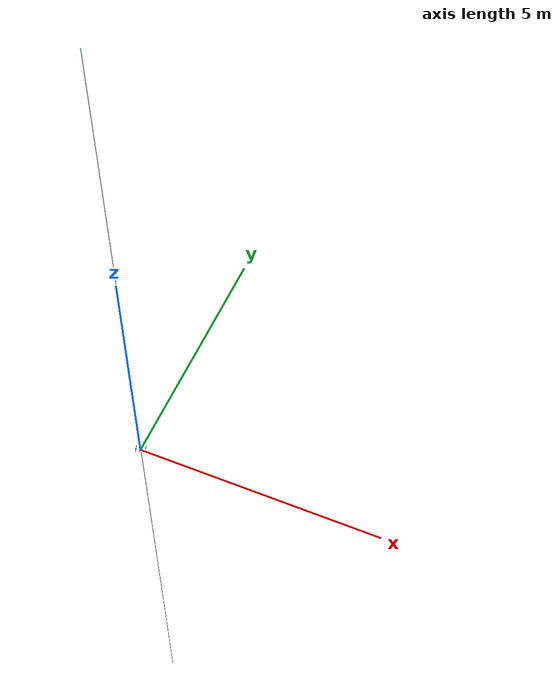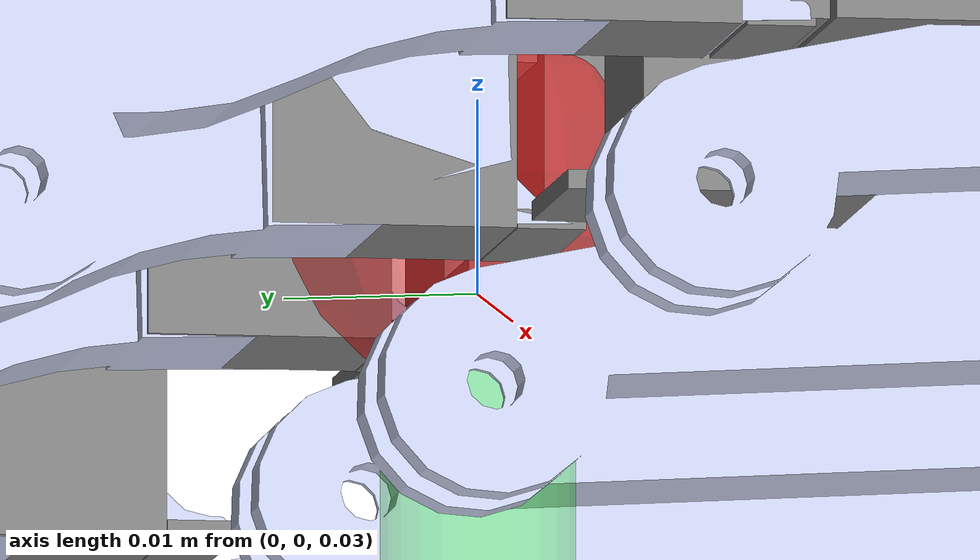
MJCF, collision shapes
<mujoco model="panda_hand">
    <asset>
        <mesh name="hand" file="meshes/panda_gripper/hand.stl" />
        <mesh name="hand_vis" file="meshes/D3_gripper_v9/base_link.STL" />
        <mesh name="finger" file="meshes/panda_gripper/finger.stl" />
        <mesh name="finger_vis" file="meshes/panda_gripper/finger_vis.stl" />
        <mesh name="finger_vis2" file="meshes/panda_gripper/finger_longer.stl" />
        <mesh name="left_gripper_finger" file="meshes/D3_gripper_v9/left_gripper_finger.STL" />
        <mesh name="right_gripper_finger" file="meshes/D3_gripper_v9/right_gripper_finger.STL" />
    </asset>
    <actuator>
        <position ctrllimited="true" ctrlrange="0.0 0.04" joint="finger_joint1" kp="1000" name="gripper_finger_joint1" forcelimited="true" forcerange="-20 20"/>
        <position ctrllimited="true" ctrlrange="-0.04 0.0" joint="finger_joint2" kp="1000" name="gripper_finger_joint2" forcelimited="true" forcerange="-20 20"/>
    </actuator>
    <worldbody>
        <body name="right_gripper" pos="0 0 -0.09" quat="0.707107 0 0 1">
            <site name="ft_frame" pos="0 0 0" size="0.01 0.01 0.01" rgba="1 0 0 1" type="sphere" group="1"/>
            <inertial pos="0 0 0.17" quat="0.707107 0.707107 0 0" mass="0.3" diaginertia="0.09 0.07 0.05" />
            <geom pos="0 0 0" quat="0.707107 0 0 0.707107" type="mesh" contype="0" conaffinity="0" group="1" mesh="hand_vis" name="hand_visual" rgba="1 1 1 1" />
            <!-- This site was added for visualization. -->
            <site name="grip_site" pos="0 0 0.125" size="0.01 0.01 0.01" rgba="1 0 0 0.5" type="sphere" group="1"/>
            <!-- This site was added for visualization. -->
            <site name="grip_site_cylinder" pos="0 0 0.1399" size="0.005 10" rgba="0 1 0 0.3" type="cylinder" group="1"/>

            <body name="leftfinger" pos="0 0 0.0524" quat="0.707107 0 0 0.707107">
                <inertial pos="0 0 0.05" mass="0.1" diaginertia="0.01 0.01 0.005" />
                <joint name="finger_joint1" pos="0 0 0" axis="0 1 0" type="slide" limited="true" range="0.0 0.04" damping="100" armature="1.0" frictionloss="1.0"/>
                <body name="finger_joint1_tip" pos="0 0.0085 0.056">
                    <inertial pos="0 0 0" quat="0 0 0 1" mass="0.01" diaginertia="0.01 0.01 0.01" />
                </body>
                <body name="right_gripper_finger" pos="0 0.039 0.0608">
                <inertial pos="-0.0018228 0.023251 -0.0083165" quat="0.537087 0.457285 0.441346 0.554654" mass="0.032218" diaginertia="1.84182e-05 1.82648e-05 6.97848e-07" />
                <geom type="mesh" group="1" contype="0" conaffinity="0" rgba="0.79216 0.81961 0.93333 1" mesh="right_gripper_finger" />
                 <geom type="mesh" group="0" rgba="0.79216 0.81961 0.93333 1" mesh="right_gripper_finger" />
                 <body name="finger_R1" pos="0.0938 -0.03058 0.01291">
                    <inertial pos="0 0 0" quat="0 0 0 1" mass="0.01" diaginertia="0.01 0.01 0.01" />
                    <geom size="0.00627 0.006 0.00601" pos="0 0 0" quat="0 0 0 1" type="box" group="0" solref="0.01 0.5" friction = "2 0.05 0.0001" conaffinity="1" contype="1" name="finger_R1_pad"/>
                </body>
                <body name="finger_R1_top" pos="0.0938 -0.03864 0.0184">
                    <inertial pos="0 0 0" quat="0 0 0 1" mass="0.01" diaginertia="0.01 0.01 0.01" />
                    <geom size="0.006 0.00175 0.00049" pos="0 0 0" quat="0 0 0 1" type="box" group="0" solref="0.01 0.5" friction = "2 0.05 0.0001" conaffinity="1" contype="1" name="finger_R1_pad_top"/>
                </body>
                <body name="finger_R1_bot" pos="0.0938 -0.03864 0.00736">
                    <inertial pos="0 0 0" quat="0 0 0 1" mass="0.01" diaginertia="0.01 0.01 0.01" />
                    <geom size="0.006 0.00175 0.00049" pos="0 0 0" quat="0 0 0 1" type="box" group="0" solref="0.01 0.5" friction = "2 0.05 0.0001" conaffinity="1" contype="1" name="finger_R1_pad_bot"/>
                </body>
                <body name="finger_R2" pos="0.03199 -0.03058 0.01291">
                    <inertial pos="0 0 0" quat="0 0 0 1" mass="0.01" diaginertia="0.01 0.01 0.01" />
                    <geom size="0.00627 0.006 0.00601" pos="0 0 0" quat="0 0 0 1" type="box" group="0" solref="0.01 0.5" friction = "2 0.05 0.0001" conaffinity="1" contype="1" name="finger_R2_pad"/>
                </body>
                <body name="finger_R2_top" pos="0.03199 -0.03864 0.0184">
                    <inertial pos="0 0 0" quat="0 0 0 1" mass="0.01" diaginertia="0.01 0.01 0.01" />
                    <geom size="0.006 0.00175 0.00049" pos="0 0 0" quat="0 0 0 1" type="box" group="0" solref="0.01 0.5" friction = "2 0.05 0.0001" conaffinity="1" contype="1" name="finger_R2_pad_top"/>
                </body>
                <body name="finger_R2_bot" pos="0.03199 -0.03864 0.00736">
                    <inertial pos="0 0 0" quat="0 0 0 1" mass="0.01" diaginertia="0.01 0.01 0.01" />
                    <geom size="0.006 0.00175 0.00049" pos="0 0 0" quat="0 0 0 1" type="box" group="0" solref="0.01 0.5" friction = "2 0.05 0.0001" conaffinity="1" contype="1" name="finger_R2_pad_bot"/>
                </body>
                <body name="finger_R3" pos="0 -0.03058 0.01291">
                    <inertial pos="0 0 0" quat="0 0 0 1" mass="0.01" diaginertia="0.01 0.01 0.01" />
                    <geom size="0.00627 0.006 0.00601" pos="0 0 0" quat="0 0 0 1" type="box" group="0" solref="0.01 0.5" friction = "2 0.05 0.0001" conaffinity="1" contype="1" name="finger_R3_pad"/>
                </body>
                <body name="finger_R3_top" pos="0 -0.03864 0.0184">
                    <inertial pos="0 0 0" quat="0 0 0 1" mass="0.01" diaginertia="0.01 0.01 0.01" />
                    <geom size="0.006 0.00175 0.00049" pos="0 0 0" quat="0 0 0 1" type="box" group="0" solref="0.01 0.5" friction = "2 0.05 0.0001" conaffinity="1" contype="1" name="finger_R3_pad_top"/>
                </body>
                <body name="finger_R3_bot" pos="0 -0.03864 0.00736">
                    <inertial pos="0 0 0" quat="0 0 0 1" mass="0.01" diaginertia="0.01 0.01 0.01" />
                    <geom size="0.006 0.00175 0.00049" pos="0 0 0" quat="0 0 0 1" type="box" group="0" solref="0.01 0.5" friction = "2 0.05 0.0001" conaffinity="1" contype="1" name="finger_R3_pad_bot"/>
                </body>
                <body name="finger_R4" pos="-0.03243 -0.03058 0.01291">
                    <inertial pos="0 0 0" quat="0 0 0 1" mass="0.01" diaginertia="0.01 0.01 0.01" />
                    <geom size="0.00627 0.006 0.00601" pos="0 0 0" quat="0 0 0 1" type="box" group="0" solref="0.01 0.5" friction = "2 0.05 0.0001" conaffinity="1" contype="1" name="finger_R4_pad"/>
                </body>
                <body name="finger_R4_top" pos="-0.03243 -0.03864 0.0184">
                    <inertial pos="0 0 0" quat="0 0 0 1" mass="0.01" diaginertia="0.01 0.01 0.01" />
                    <geom size="0.006 0.00175 0.00049" pos="0 0 0" quat="0 0 0 1" type="box" group="0" solref="0.01 0.5" friction = "2 0.05 0.0001" conaffinity="1" contype="1" name="finger_R4_pad_top"/>
                </body>
                <body name="finger_R4_bot" pos="-0.03243 -0.03864 0.00736">
                    <inertial pos="0 0 0" quat="0 0 0 1" mass="0.01" diaginertia="0.01 0.01 0.01" />
                    <geom size="0.006 0.00175 0.00049" pos="0 0 0" quat="0 0 0 1" type="box" group="0" solref="0.01 0.5" friction = "2 0.05 0.0001" conaffinity="1" contype="1" name="finger_R4_pad_bot"/>
                </body>
             </body>

            </body>
            <body name="rightfinger" pos="0 0 0.0524" quat="0.707107 0 0 0.707107">
                <inertial pos="0 0 0.05" mass="0.1" diaginertia="0.01 0.01 0.005" />
                <joint name="finger_joint2" pos="0 0 0" axis="0 1 0" type="slide" limited="true" range="-0.04 0.0" damping="100" armature="1.0" frictionloss="1.0"/>
                <body name="finger_joint2_tip" pos="0 -0.0085 0.056">
                    <inertial pos="0 0 0" quat="0 0 0 1" mass="0.01" diaginertia="0.01 0.01 0.01" />
                </body>
                <body name="left_gripper_finger" pos="0 -0.039 0.059" quat="-0.707107 0 0 0">
                <inertial pos="0.0018228 -0.00018314 -0.0083165" quat="0.457285 0.537087 0.554654 0.441346" mass="0.032218" diaginertia="1.84182e-05 1.82648e-05 6.97848e-07" />
                <geom type="mesh" group="1" contype="0" conaffinity="0" rgba="0.79216 0.81961 0.93333 1" mesh="left_gripper_finger" />
                <geom type="mesh" group="0" rgba="0.79216 0.81961 0.93333 1" mesh="left_gripper_finger" />
                <body name="finger_L1" pos="0.0938 0.03058 0.01431">
                    <inertial pos="0 0 0" quat="0 0 0 1" mass="0.01" diaginertia="0.01 0.01 0.01" />
                    <geom size="0.00627 0.006 0.00601" pos="0 0 0" quat="0 0 0 1" type="box" group="0" solref="0.01 0.5" friction = "2 0.05 0.0001" conaffinity="1" contype="1" name="finger_L1_pad"/>
                </body>
                <body name="finger_L1_top" pos="0.0938 0.03864 0.0198">
                    <inertial pos="0 0 0" quat="0 0 0 1" mass="0.01" diaginertia="0.01 0.01 0.01" />
                    <geom size="0.006 0.00175 0.00049" pos="0 0 0" quat="0 0 0 1" type="box" group="0" solref="0.01 0.5" friction = "2 0.05 0.0001" conaffinity="1" contype="1" name="finger_L1_pad_top"/>
                </body>
                <body name="finger_L1_bot" pos="0.0938 0.03864 0.00876">
                    <inertial pos="0 0 0" quat="0 0 0 1" mass="0.01" diaginertia="0.01 0.01 0.01" />
                    <geom size="0.006 0.00175 0.00049" pos="0 0 0" quat="0 0 0 1" type="box" group="0" solref="0.01 0.5" friction = "2 0.05 0.0001" conaffinity="1" contype="1" name="finger_L1_pad_bot"/>
                </body>
                <body name="finger_L2" pos="0.02026 0.03058 0.01431">
                    <inertial pos="0 0 0" quat="0 0 0 1" mass="0.01" diaginertia="0.01 0.01 0.01" />
                    <geom size="0.006 0.00627 0.00601" pos="0 0 0" quat="0 0 0 1" type="box" group="0" solref="0.01 0.5" friction = "2 0.05 0.0001" conaffinity="1" contype="1" name="finger_L2_pad"/>
                </body>
                <body name="finger_L2_top" pos="0.02026 0.03864 0.0198">
                    <inertial pos="0 0 0" quat="0 0 0 1" mass="0.01" diaginertia="0.01 0.01 0.01" />
                    <geom size="0.006 0.00175 0.00049" pos="0 0 0" quat="0 0 0 1" type="box" group="0" solref="0.01 0.5" friction = "2 0.05 0.0001" conaffinity="1" contype="1" name="finger_L2_pad_top"/>
                </body>
                <body name="finger_L2_bot" pos="0.02026 0.03864 0.00876">
                    <inertial pos="0 0 0" quat="0 0 0 1" mass="0.01" diaginertia="0.01 0.01 0.01" />
                    <geom size="0.006 0.00175 0.00049" pos="0 0 0" quat="0 0 0 1" type="box" group="0" solref="0.01 0.5" friction = "2 0.05 0.0001" conaffinity="1" contype="1" name="finger_L2_pad_bot"/>
                </body>
                <body name="finger_L3" pos="-0.02026 0.03058 0.01431">
                    <inertial pos="0 0 0" quat="0 0 0 1" mass="0.01" diaginertia="0.01 0.01 0.01" />
                    <geom size="0.006 0.00627 0.00601" pos="0 0 0" quat="0 0 0 1" type="box" group="0" solref="0.01 0.5" friction = "2 0.05 0.0001" conaffinity="1" contype="1" name="finger_L3_pad"/>
                </body>
                <body name="finger_L3_top" pos="-0.02026 0.03864 0.0198">
                    <inertial pos="0 0 0" quat="0 0 0 1" mass="0.01" diaginertia="0.01 0.01 0.01" />
                    <geom size="0.006 0.00175 0.00049" pos="0 0 0" quat="0 0 0 1" type="box" group="0" solref="0.01 0.5" friction = "2 0.05 0.0001" conaffinity="1" contype="1" name="finger_L3_pad_top"/>
                </body>
                <body name="finger_L3_bot" pos="-0.02026 0.03864 0.00876">
                    <inertial pos="0 0 0" quat="0 0 0 1" mass="0.01" diaginertia="0.01 0.01 0.01" />
                    <geom size="0.006 0.00175 0.00049" pos="0 0 0" quat="0 0 0 1" type="box" group="0" solref="0.01 0.5" friction = "2 0.05 0.0001" conaffinity="1" contype="1" name="finger_L3_pad_bot"/>
                </body>
                <body name="finger_L4" pos="-0.0938 0.03058 0.01431">
                    <inertial pos="0 0 0" quat="0 0 0 1" mass="0.01" diaginertia="0.01 0.01 0.01" />
                    <geom size="0.006 0.00627 0.00601" pos="0 0 0" quat="0 0 0 1" type="box" group="0" solref="0.01 0.5" friction = "2 0.05 0.0001" conaffinity="1" contype="1" name="finger_L4_pad"/>
                </body>
                <body name="finger_L4_top" pos="-0.0938 0.03864 0.0198">
                    <inertial pos="0 0 0" quat="0 0 0 1" mass="0.01" diaginertia="0.01 0.01 0.01" />
                    <geom size="0.006 0.00175 0.00049" pos="0 0 0" quat="0 0 0 1" type="box" group="0" solref="0.01 0.5" friction = "2 0.05 0.0001" conaffinity="1" contype="1" name="finger_L4_pad_top"/>
                </body>
                <body name="finger_L4_bot" pos="-0.0938 0.03864 0.00876">
                    <inertial pos="0 0 0" quat="0 0 0 1" mass="0.01" diaginertia="0.01 0.01 0.01" />
                    <geom size="0.006 0.00175 0.00049" pos="0 0 0" quat="0 0 0 1" type="box" group="0" solref="0.01 0.5" friction = "2 0.05 0.0001" conaffinity="1" contype="1" name="finger_L4_pad_bot"/>
                </body>
                </body>

            </body>
        </body>
    </worldbody>
    <sensor>
        <force name="force_ee" site="ft_frame"/>
        <torque name="torque_ee" site="ft_frame"/>
    </sensor>
</mujoco>
